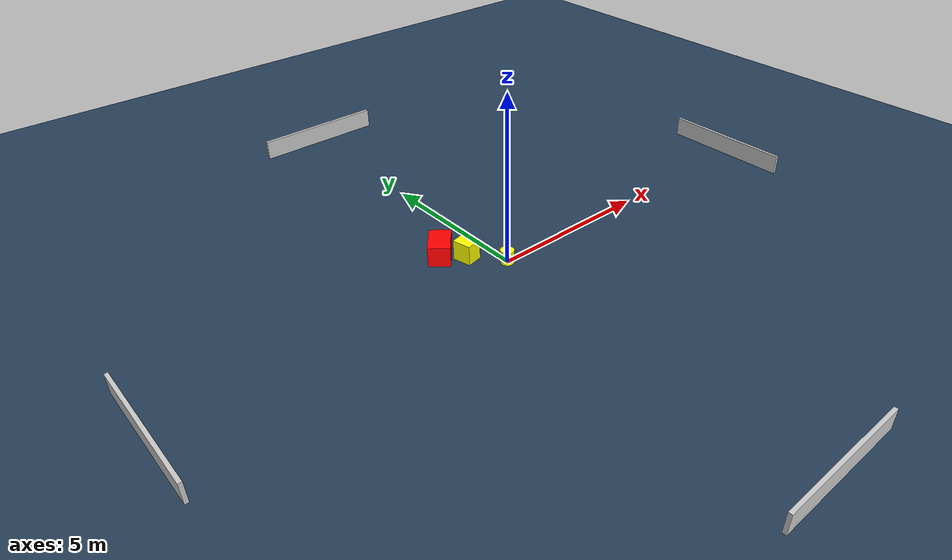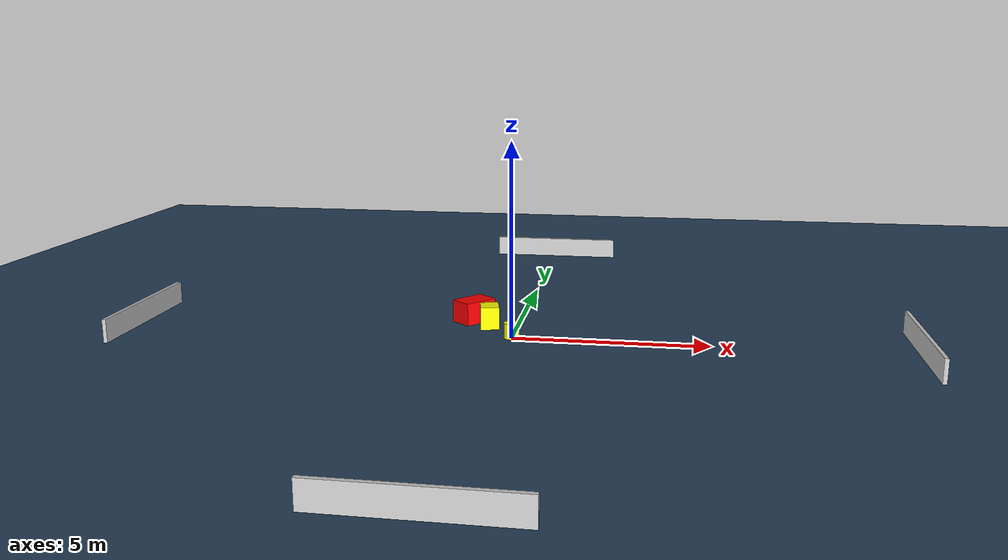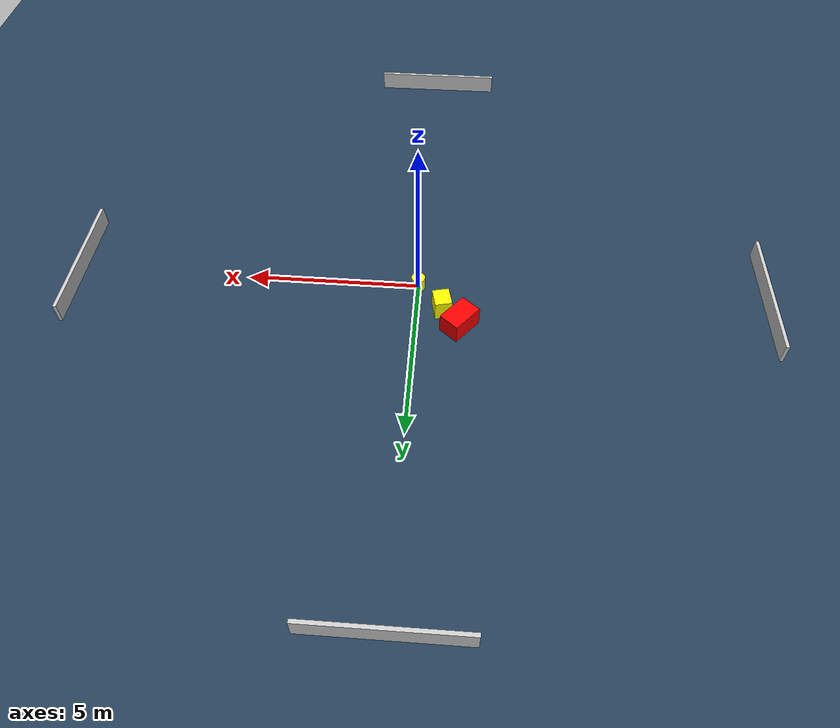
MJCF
<?xml version="1.0" ?>
<mujoco model="generated_environment">
  <option timestep="0.01" integrator="RK4" cone="elliptic"/>
  <default>
    <geom density="1"/>
  </default>
  <asset>
    <texture builtin="gradient" height="3072" name="skybox" rgb1="0.3 0.5 0.7" rgb2="0 0 0" type="skybox" width="512"/>
    <texture builtin="checker" height="300" name="groundplane" rgb1="0.2 0.3 0.4" rgb2="0.1 0.2 0.3" type="2d" width="300"/>
    <material name="groundplane" reflectance="0.2" texrepeat="5 5" texture="groundplane"/>
  </asset>
  <worldbody>
    <light dir="0 0 -1" directional="true" pos="0 0 1.5"/>
    <geom condim="3" friction="0.5 0.005 0.001" material="groundplane" name="floor" pos="0 0 0" size="0 0 0.05" type="plane"/>
    <body name="walls">
      <geom name="wall_1" condim="4" pos="-10.0 0.0 0.3" rgba="0.800000011920929 0.800000011920929 0.800000011920929 1.0" size="0.05 2.0 0.3" type="box"/>
      <geom name="wall_2" condim="4" pos="10.0 0.0 0.3" rgba="0.800000011920929 0.800000011920929 0.800000011920929 1.0" size="0.05 2.0 0.3" type="box"/>
      <geom name="wall_3" condim="4" pos="0.0 -10.0 0.3" rgba="0.800000011920929 0.800000011920929 0.800000011920929 1.0" size="2.0 0.05 0.3" type="box"/>
      <geom name="wall_4" condim="4" pos="0.0 10.0 0.3" rgba="0.800000011920929 0.800000011920929 0.800000011920929 1.0" size="2.0 0.05 0.3" type="box"/>
    </body>
    <body name="robot">
      <joint name="joint_x" type="slide" pos="0 0 0" axis="1 0 0"/>
      <joint name="joint_y" type="slide" pos="0 0 0" axis="0 1 0"/>
      <geom name="robot" type="cylinder" pos="0.0 0.0 0.2" size="0.2 0.2 0.0" mass="5.0" friction="1.0 0.005 0.0001" condim="4" rgba="1.0 1.0 0.0 1.0"/>
    </body>
    <body name="obstacle_1_movable">
      <geom name="obstacle_1_movable" condim="4" pos="-0.7271207059260544 0.8742905627215102 0.3" euler="0 0 12.74339043772262" friction="0.0 0.005 0.001" rgba="1.0 1.0 0.0 1.0" size="0.24084968760201958 0.27820101818937837 0.3" type="box" mass="0.1"/>
      <joint type="free"/>
    </body>
    <body name="obstacle_2_static">
      <geom name="obstacle_2_static" condim="4" pos="-1.24697773647095 1.415297432591557 0.3" euler="0 0 320.16472781269186" friction="0.0 0.005 0.001" rgba="1.0 0.0 0.0 1.0" size="0.31590303573047873 0.4719938869826469 0.3" type="box"/>
    </body>
  </worldbody>
  <actuator>
    <motor name="actuator_x" joint="joint_x" gear="1" ctrlrange="-1 1"/>
    <motor name="actuator_y" joint="joint_y" gear="1" ctrlrange="-1 1"/>
  </actuator>
</mujoco>
